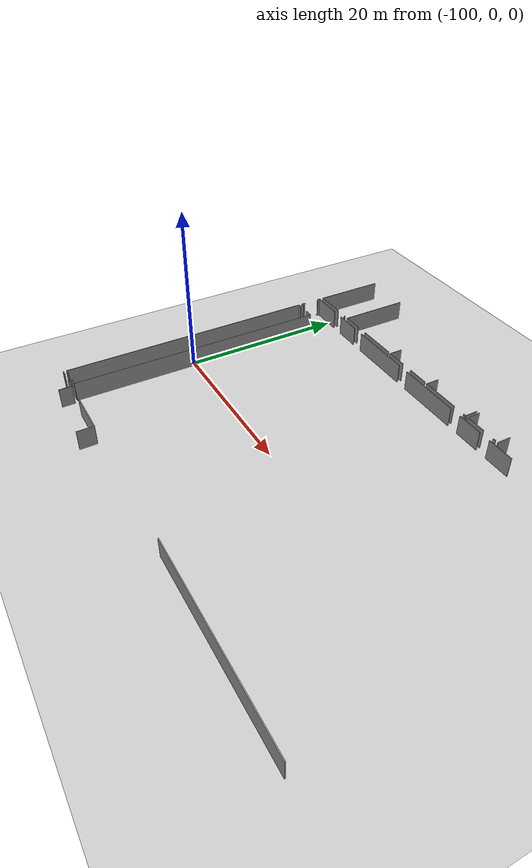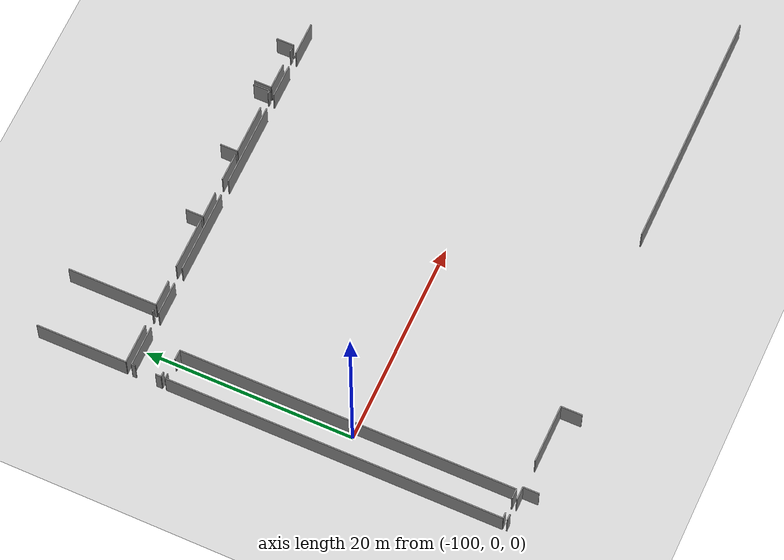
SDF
<sdf version="1.6">
 <world name="default">
  <model name="ground_plane">
   <static>1</static>
   <link name="link">
    <collision name="collision">
     <geometry><plane><normal>0 0 1</normal><size>100 100</size></plane></geometry>
     <surface><friction><ode><mu>100</mu><mu2>50</mu2></ode></friction></surface>
    </collision>
    <visual name="visual">
     <cast_shadows>0</cast_shadows>
     <geometry><plane><normal>0 0 1</normal><size>100 100</size></plane></geometry>
     <material>
      <script><uri>file://media/materials/scripts/gazebo.material</uri><name>Gazebo/Grey</name></script>
     </material>
    </visual>
   </link>
  </model>
  <model name="50010536_PLAN3">
   <static>1</static>
   <link name="Wall_0">
    <collision name="Wall_0_Collision">
     <geometry><box><size>8.70365362029 0.1 2.5</size></box></geometry>
     <pose>4.35182681015 0 1.25 0 0 0</pose>
    </collision>
    <visual name="Wall_0_Visual">
     <pose>4.35182681015 0 1.25 0 0 0</pose>
     <geometry><box><size>8.70365362029 0.1 2.5</size></box></geometry>
     <material>
      <script><uri>file://media/materials/scripts/gazebo.material</uri><name>Gazebo/Grey</name></script>
      <ambient>1 1 1 1</ambient>
     </material>
    </visual>
    <pose>0.0284417357077 -8.98103672666 0 0 0 1.57079632679</pose>
   </link>
   <link name="Wall_4">
    <collision name="Wall_4_Collision">
     <geometry><box><size>0.234898263657 0.1 2.5</size></box></geometry>
     <pose>0.117449131829 0 1.25 0 0 0</pose>
    </collision>
    <visual name="Wall_4_Visual">
     <pose>0.117449131829 0 1.25 0 0 0</pose>
     <geometry><box><size>0.234898263657 0.1 2.5</size></box></geometry>
     <material>
      <script><uri>file://media/materials/scripts/gazebo.material</uri><name>Gazebo/Grey</name></script>
      <ambient>1 1 1 1</ambient>
     </material>
    </visual>
    <pose>5.57534203092 -8.98586166397 0 0 0 3.14159265359</pose>
   </link>
   <link name="Wall_5">
    <collision name="Wall_5_Collision">
     <geometry><box><size>3.88052231522 0.1 2.5</size></box></geometry>
     <pose>1.94026115761 0 1.25 0 0 0</pose>
    </collision>
    <visual name="Wall_5_Visual">
     <pose>1.94026115761 0 1.25 0 0 0</pose>
     <geometry><box><size>3.88052231522 0.1 2.5</size></box></geometry>
     <material>
      <script><uri>file://media/materials/scripts/gazebo.material</uri><name>Gazebo/Grey</name></script>
      <ambient>1 1 1 1</ambient>
     </material>
    </visual>
    <pose>3.90896105133 -8.98586166397 0 0 0 3.14034928011</pose>
   </link>
   <link name="Wall_6">
    <collision name="Wall_6_Collision">
     <geometry><box><size>8.59194362442 0.1 2.5</size></box></geometry>
     <pose>4.29597181221 0 1.25 0 0 0</pose>
    </collision>
    <visual name="Wall_6_Visual">
     <pose>4.29597181221 0 1.25 0 0 0</pose>
     <geometry><box><size>8.59194362442 0.1 2.5</size></box></geometry>
     <material>
      <script><uri>file://media/materials/scripts/gazebo.material</uri><name>Gazebo/Grey</name></script>
      <ambient>1 1 1 1</ambient>
     </material>
    </visual>
    <pose>6.09694314827 -8.98509983176 0 0 0 1.57079632679</pose>
   </link>
   <link name="Wall_16">
    <collision name="Wall_16_Collision">
     <geometry><box><size>5.1129098816 0.1 2.5</size></box></geometry>
     <pose>2.5564549408 0 1.25 0 0 0</pose>
    </collision>
    <visual name="Wall_16_Visual">
     <pose>2.5564549408 0 1.25 0 0 0</pose>
     <geometry><box><size>5.1129098816 0.1 2.5</size></box></geometry>
     <material>
      <script><uri>file://media/materials/scripts/gazebo.material</uri><name>Gazebo/Grey</name></script>
      <ambient>1 1 1 1</ambient>
     </material>
    </visual>
    <pose>15.3105418532 -8.96478430626 0 0 0 3.14159265359</pose>
   </link>
   <link name="Wall_17">
    <collision name="Wall_17_Collision">
     <geometry><box><size>2.54104556468 0.1 2.5</size></box></geometry>
     <pose>1.27052278234 0 1.25 0 0 0</pose>
    </collision>
    <visual name="Wall_17_Visual">
     <pose>1.27052278234 0 1.25 0 0 0</pose>
     <geometry><box><size>2.54104556468 0.1 2.5</size></box></geometry>
     <material>
      <script><uri>file://media/materials/scripts/gazebo.material</uri><name>Gazebo/Grey</name></script>
      <ambient>1 1 1 1</ambient>
     </material>
    </visual>
    <pose>8.63790750087 -8.96478430626 0 0 0 -3.13359762106</pose>
   </link>
   <link name="Wall_18">
    <collision name="Wall_18_Collision">
     <geometry><box><size>1.70117131702 0.1 2.5</size></box></geometry>
     <pose>0.850585658509 0 1.25 0 0 0</pose>
    </collision>
    <visual name="Wall_18_Visual">
     <pose>0.850585658509 0 1.25 0 0 0</pose>
     <geometry><box><size>1.70117131702 0.1 2.5</size></box></geometry>
     <material>
      <script><uri>file://media/materials/scripts/gazebo.material</uri><name>Gazebo/Grey</name></script>
      <ambient>1 1 1 1</ambient>
     </material>
    </visual>
    <pose>15.6721582072 -9.00770085389 0 0 0 1.57079632679</pose>
   </link>
   <link name="Wall_27">
    <collision name="Wall_27_Collision">
     <geometry><box><size>2.74513538393 0.1 2.5</size></box></geometry>
     <pose>1.37256769197 0 1.25 0 0 0</pose>
    </collision>
    <visual name="Wall_27_Visual">
     <pose>1.37256769197 0 1.25 0 0 0</pose>
     <geometry><box><size>2.74513538393 0.1 2.5</size></box></geometry>
     <material>
      <script><uri>file://media/materials/scripts/gazebo.material</uri><name>Gazebo/Grey</name></script>
      <ambient>1 1 1 1</ambient>
     </material>
    </visual>
    <pose>22.5101101482 -8.9701171317 0 0 0 3.14159265359</pose>
   </link>
   <link name="Wall_28">
    <collision name="Wall_28_Collision">
     <geometry><box><size>2.6026901922 0.1 2.5</size></box></geometry>
     <pose>1.3013450961 0 1.25 0 0 0</pose>
    </collision>
    <visual name="Wall_28_Visual">
     <pose>1.3013450961 0 1.25 0 0 0</pose>
     <geometry><box><size>2.6026901922 0.1 2.5</size></box></geometry>
     <material>
      <script><uri>file://media/materials/scripts/gazebo.material</uri><name>Gazebo/Grey</name></script>
      <ambient>1 1 1 1</ambient>
     </material>
    </visual>
    <pose>18.2745770244 -8.9701171317 0 0 0 -3.12715181518</pose>
   </link>
   <link name="Wall_29">
    <collision name="Wall_29_Collision">
     <geometry><box><size>1.68237945592 0.1 2.5</size></box></geometry>
     <pose>0.841189727962 0 1.25 0 0 0</pose>
    </collision>
    <visual name="Wall_29_Visual">
     <pose>0.841189727962 0 1.25 0 0 0</pose>
     <geometry><box><size>1.68237945592 0.1 2.5</size></box></geometry>
     <material>
      <script><uri>file://media/materials/scripts/gazebo.material</uri><name>Gazebo/Grey</name></script>
      <ambient>1 1 1 1</ambient>
     </material>
    </visual>
    <pose>22.8846776497 -8.98890899279 0 0 0 1.57079632679</pose>
   </link>
   <link name="Wall_37">
    <collision name="Wall_37_Collision">
     <geometry><box><size>1.58867409453 0.1 2.5</size></box></geometry>
     <pose>0.794337047265 0 1.25 0 0 0</pose>
    </collision>
    <visual name="Wall_37_Visual">
     <pose>0.794337047265 0 1.25 0 0 0</pose>
     <geometry><box><size>1.58867409453 0.1 2.5</size></box></geometry>
     <material>
      <script><uri>file://media/materials/scripts/gazebo.material</uri><name>Gazebo/Grey</name></script>
      <ambient>1 1 1 1</ambient>
     </material>
    </visual>
    <pose>29.7043456179 -7.39388629654 0 0 0 -1.57079632679</pose>
   </link>
   <link name="Wall_38">
    <collision name="Wall_38_Collision">
     <geometry><box><size>0.329111513189 0.1 2.5</size></box></geometry>
     <pose>0.164555756595 0 1.25 0 0 0</pose>
    </collision>
    <visual name="Wall_38_Visual">
     <pose>0.164555756595 0 1.25 0 0 0</pose>
     <geometry><box><size>0.329111513189 0.1 2.5</size></box></geometry>
     <material>
      <script><uri>file://media/materials/scripts/gazebo.material</uri><name>Gazebo/Grey</name></script>
      <ambient>1 1 1 1</ambient>
     </material>
    </visual>
    <pose>29.7043456179 -8.98256039107 0 0 0 3.14159265359</pose>
   </link>
   <link name="Wall_39">
    <collision name="Wall_39_Collision">
     <geometry><box><size>4.90391802241 0.1 2.5</size></box></geometry>
     <pose>2.4519590112 0 1.25 0 0 0</pose>
    </collision>
    <visual name="Wall_39_Visual">
     <pose>2.4519590112 0 1.25 0 0 0</pose>
     <geometry><box><size>4.90391802241 0.1 2.5</size></box></geometry>
     <material>
      <script><uri>file://media/materials/scripts/gazebo.material</uri><name>Gazebo/Grey</name></script>
      <ambient>1 1 1 1</ambient>
     </material>
    </visual>
    <pose>27.7885915627 -8.98256039107 0 0 0 -3.14029805538</pose>
   </link>
   <link name="Wall_40">
    <collision name="Wall_40_Collision">
     <geometry><box><size>1.66460337111 0.1 2.5</size></box></geometry>
     <pose>0.832301685554 0 1.25 0 0 0</pose>
    </collision>
    <visual name="Wall_40_Visual">
     <pose>0.832301685554 0 1.25 0 0 0</pose>
     <geometry><box><size>1.66460337111 0.1 2.5</size></box></geometry>
     <material>
      <script><uri>file://media/materials/scripts/gazebo.material</uri><name>Gazebo/Grey</name></script>
      <ambient>1 1 1 1</ambient>
     </material>
    </visual>
    <pose>30.0624067549 -8.9774815097 0 0 0 1.57079632679</pose>
   </link>
   <link name="Wall_48">
    <collision name="Wall_48_Collision">
     <geometry><box><size>0.365679459099 0.1 2.5</size></box></geometry>
     <pose>0.18283972955 0 1.25 0 0 0</pose>
    </collision>
    <visual name="Wall_48_Visual">
     <pose>0.18283972955 0 1.25 0 0 0</pose>
     <geometry><box><size>0.365679459099 0.1 2.5</size></box></geometry>
     <material>
      <script><uri>file://media/materials/scripts/gazebo.material</uri><name>Gazebo/Grey</name></script>
      <ambient>1 1 1 1</ambient>
     </material>
    </visual>
    <pose>34.5061740152 -8.98103672666 0 0 0 3.14159265359</pose>
   </link>
   <link name="Wall_49">
    <collision name="Wall_49_Collision">
     <geometry><box><size>2.56382178378 0.1 2.5</size></box></geometry>
     <pose>1.28191089189 0 1.25 0 0 0</pose>
    </collision>
    <visual name="Wall_49_Visual">
     <pose>1.28191089189 0 1.25 0 0 0</pose>
     <geometry><box><size>2.56382178378 0.1 2.5</size></box></geometry>
     <material>
      <script><uri>file://media/materials/scripts/gazebo.material</uri><name>Gazebo/Grey</name></script>
      <ambient>1 1 1 1</ambient>
     </material>
    </visual>
    <pose>32.6262260737 -8.98103672666 0 0 0 3.14020596668</pose>
   </link>
   <link name="Wall_50">
    <collision name="Wall_50_Collision">
     <geometry><box><size>1.69228327461 0.1 2.5</size></box></geometry>
     <pose>0.846141637304 0 1.25 0 0 0</pose>
    </collision>
    <visual name="Wall_50_Visual">
     <pose>0.846141637304 0 1.25 0 0 0</pose>
     <geometry><box><size>1.69228327461 0.1 2.5</size></box></geometry>
     <material>
      <script><uri>file://media/materials/scripts/gazebo.material</uri><name>Gazebo/Grey</name></script>
      <ambient>1 1 1 1</ambient>
     </material>
    </visual>
    <pose>34.8680443132 -8.99601942672 0 0 0 1.57079632679</pose>
   </link>
   <link name="Wall_85">
    <collision name="Wall_85_Collision">
     <geometry><box><size>32.1571913786 0.1 2.5</size></box></geometry>
     <pose>16.0785956893 0 1.25 0 0 0</pose>
    </collision>
    <visual name="Wall_85_Visual">
     <pose>16.0785956893 0 1.25 0 0 0</pose>
     <geometry><box><size>32.1571913786 0.1 2.5</size></box></geometry>
     <material>
      <script><uri>file://media/materials/scripts/gazebo.material</uri><name>Gazebo/Grey</name></script>
      <ambient>1 1 1 1</ambient>
     </material>
    </visual>
    <pose>0.0192997492302 -44.9560232359 0 0 0 1.57079632679</pose>
   </link>
   <link name="Wall_86">
    <collision name="Wall_86_Collision">
     <geometry><box><size>0.495952766403 0.1 2.5</size></box></geometry>
     <pose>0.247976383202 0 1.25 0 0 0</pose>
    </collision>
    <visual name="Wall_86_Visual">
     <pose>0.247976383202 0 1.25 0 0 0</pose>
     <geometry><box><size>0.495952766403 0.1 2.5</size></box></geometry>
     <material>
      <script><uri>file://media/materials/scripts/gazebo.material</uri><name>Gazebo/Grey</name></script>
      <ambient>1 1 1 1</ambient>
     </material>
    </visual>
    <pose>0.0192997492302 -12.7988318573 0 0 0 0.0</pose>
   </link>
   <link name="Wall_87">
    <collision name="Wall_87_Collision">
     <geometry><box><size>0.965749293718 0.1 2.5</size></box></geometry>
     <pose>0.482874646859 0 1.25 0 0 0</pose>
    </collision>
    <visual name="Wall_87_Visual">
     <pose>0.482874646859 0 1.25 0 0 0</pose>
     <geometry><box><size>0.965749293718 0.1 2.5</size></box></geometry>
     <material>
      <script><uri>file://media/materials/scripts/gazebo.material</uri><name>Gazebo/Grey</name></script>
      <ambient>1 1 1 1</ambient>
     </material>
    </visual>
    <pose>1.99701615719 -12.7988318573 0 0 0 0.0</pose>
   </link>
   <link name="Wall_88">
    <collision name="Wall_88_Collision">
     <geometry><box><size>32.1386534616 0.1 2.5</size></box></geometry>
     <pose>16.0693267308 0 1.25 0 0 0</pose>
    </collision>
    <visual name="Wall_88_Visual">
     <pose>16.0693267308 0 1.25 0 0 0</pose>
     <geometry><box><size>32.1386534616 0.1 2.5</size></box></geometry>
     <material>
      <script><uri>file://media/materials/scripts/gazebo.material</uri><name>Gazebo/Grey</name></script>
      <ambient>1 1 1 1</ambient>
     </material>
    </visual>
    <pose>2.96276545091 -12.7988318573 0 0 0 -1.57079632679</pose>
   </link>
   <link name="Wall_89">
    <collision name="Wall_89_Collision">
     <geometry><box><size>0.940608830905 0.1 2.5</size></box></geometry>
     <pose>0.470304415452 0 1.25 0 0 0</pose>
    </collision>
    <visual name="Wall_89_Visual">
     <pose>0.470304415452 0 1.25 0 0 0</pose>
     <geometry><box><size>0.940608830905 0.1 2.5</size></box></geometry>
     <material>
      <script><uri>file://media/materials/scripts/gazebo.material</uri><name>Gazebo/Grey</name></script>
      <ambient>1 1 1 1</ambient>
     </material>
    </visual>
    <pose>2.96276545091 -44.9374853189 0 0 0 3.14159265359</pose>
   </link>
   <link name="Wall_90">
    <collision name="Wall_90_Collision">
     <geometry><box><size>0.564314347457 0.1 2.5</size></box></geometry>
     <pose>0.282157173729 0 1.25 0 0 0</pose>
    </collision>
    <visual name="Wall_90_Visual">
     <pose>0.282157173729 0 1.25 0 0 0</pose>
     <geometry><box><size>0.564314347457 0.1 2.5</size></box></geometry>
     <material>
      <script><uri>file://media/materials/scripts/gazebo.material</uri><name>Gazebo/Grey</name></script>
      <ambient>1 1 1 1</ambient>
     </material>
    </visual>
    <pose>0.583309526077 -44.9374853189 0 0 0 -3.10873640439</pose>
   </link>
   <link name="Wall_91">
    <collision name="Wall_91_Collision">
     <geometry><box><size>3.88534425293 0.1 2.5</size></box></geometry>
     <pose>1.94267212646 0 1.25 0 0 0</pose>
    </collision>
    <visual name="Wall_91_Visual">
     <pose>1.94267212646 0 1.25 0 0 0</pose>
     <geometry><box><size>3.88534425293 0.1 2.5</size></box></geometry>
     <material>
      <script><uri>file://media/materials/scripts/gazebo.material</uri><name>Gazebo/Grey</name></script>
      <ambient>1 1 1 1</ambient>
     </material>
    </visual>
    <pose>0.0172681966797 -9.52854013903 0 0 0 0.0</pose>
   </link>
   <link name="Wall_92">
    <collision name="Wall_92_Collision">
     <geometry><box><size>3.22712122655 0.1 2.5</size></box></geometry>
     <pose>1.61356061327 0 1.25 0 0 0</pose>
    </collision>
    <visual name="Wall_92_Visual">
     <pose>1.61356061327 0 1.25 0 0 0</pose>
     <geometry><box><size>3.22712122655 0.1 2.5</size></box></geometry>
     <material>
      <script><uri>file://media/materials/scripts/gazebo.material</uri><name>Gazebo/Grey</name></script>
      <ambient>1 1 1 1</ambient>
     </material>
    </visual>
    <pose>5.4516712694 -9.52854013903 0 0 0 0.0</pose>
   </link>
   <link name="Wall_93">
    <collision name="Wall_93_Collision">
     <geometry><box><size>8.06551756976 0.1 2.5</size></box></geometry>
     <pose>4.03275878488 0 1.25 0 0 0</pose>
    </collision>
    <visual name="Wall_93_Visual">
     <pose>4.03275878488 0 1.25 0 0 0</pose>
     <geometry><box><size>8.06551756976 0.1 2.5</size></box></geometry>
     <material>
      <script><uri>file://media/materials/scripts/gazebo.material</uri><name>Gazebo/Grey</name></script>
      <ambient>1 1 1 1</ambient>
     </material>
    </visual>
    <pose>10.2308986446 -9.52854013903 0 0 0 0.0</pose>
   </link>
   <link name="Wall_94">
    <collision name="Wall_94_Collision">
     <geometry><box><size>8.11071961401 0.1 2.5</size></box></geometry>
     <pose>4.055359807 0 1.25 0 0 0</pose>
    </collision>
    <visual name="Wall_94_Visual">
     <pose>4.055359807 0 1.25 0 0 0</pose>
     <geometry><box><size>8.11071961401 0.1 2.5</size></box></geometry>
     <material>
      <script><uri>file://media/materials/scripts/gazebo.material</uri><name>Gazebo/Grey</name></script>
      <ambient>1 1 1 1</ambient>
     </material>
    </visual>
    <pose>19.8023045424 -9.52854013903 0 0 0 0.0</pose>
   </link>
   <link name="Wall_95">
    <collision name="Wall_95_Collision">
     <geometry><box><size>3.27029171825 0.1 2.5</size></box></geometry>
     <pose>1.63514585912 0 1.25 0 0 0</pose>
    </collision>
    <visual name="Wall_95_Visual">
     <pose>1.63514585912 0 1.25 0 0 0</pose>
     <geometry><box><size>3.27029171825 0.1 2.5</size></box></geometry>
     <material>
      <script><uri>file://media/materials/scripts/gazebo.material</uri><name>Gazebo/Grey</name></script>
      <ambient>1 1 1 1</ambient>
     </material>
    </visual>
    <pose>29.4135796591 -9.52854013903 0 0 0 0.0</pose>
   </link>
   <link name="Wall_96">
    <collision name="Wall_96_Collision">
     <geometry><box><size>3.31727137098 0.1 2.5</size></box></geometry>
     <pose>1.65863568549 0 1.25 0 0 0</pose>
    </collision>
    <visual name="Wall_96_Visual">
     <pose>1.65863568549 0 1.25 0 0 0</pose>
     <geometry><box><size>3.31727137098 0.1 2.5</size></box></geometry>
     <material>
      <script><uri>file://media/materials/scripts/gazebo.material</uri><name>Gazebo/Grey</name></script>
      <ambient>1 1 1 1</ambient>
     </material>
    </visual>
    <pose>34.1816334952 -9.52854013903 0 0 0 0.0</pose>
   </link>
   <link name="Wall_105">
    <collision name="Wall_105_Collision">
     <geometry><box><size>0.4837634511 0.1 2.5</size></box></geometry>
     <pose>0.24188172555 0 1.25 0 0 0</pose>
    </collision>
    <visual name="Wall_105_Visual">
     <pose>0.24188172555 0 1.25 0 0 0</pose>
     <geometry><box><size>0.4837634511 0.1 2.5</size></box></geometry>
     <material>
      <script><uri>file://media/materials/scripts/gazebo.material</uri><name>Gazebo/Grey</name></script>
      <ambient>1 1 1 1</ambient>
     </material>
    </visual>
    <pose>0.50534869695 -12.3965844523 0 0 0 3.14159265359</pose>
   </link>
   <link name="Wall_106">
    <collision name="Wall_106_Collision">
     <geometry><box><size>0.540392978446 0.1 2.5</size></box></geometry>
     <pose>0.270196489223 0 1.25 0 0 0</pose>
    </collision>
    <visual name="Wall_106_Visual">
     <pose>0.270196489223 0 1.25 0 0 0</pose>
     <geometry><box><size>0.540392978446 0.1 2.5</size></box></geometry>
     <material>
      <script><uri>file://media/materials/scripts/gazebo.material</uri><name>Gazebo/Grey</name></script>
      <ambient>1 1 1 1</ambient>
     </material>
    </visual>
    <pose>0.0215852458496 -12.3965844523 0 0 0 1.57079632679</pose>
   </link>
   <link name="Wall_107">
    <collision name="Wall_107_Collision">
     <geometry><box><size>0.364181382991 0.1 2.5</size></box></geometry>
     <pose>0.182090691495 0 1.25 0 0 0</pose>
    </collision>
    <visual name="Wall_107_Visual">
     <pose>0.182090691495 0 1.25 0 0 0</pose>
     <geometry><box><size>0.364181382991 0.1 2.5</size></box></geometry>
     <material>
      <script><uri>file://media/materials/scripts/gazebo.material</uri><name>Gazebo/Grey</name></script>
      <ambient>1 1 1 1</ambient>
     </material>
    </visual>
    <pose>0.0215852458496 -9.89269593372 0 0 0 1.58265072266</pose>
   </link>
   <link name="Wall_110">
    <collision name="Wall_110_Collision">
     <geometry><box><size>0.592959400692 0.1 2.5</size></box></geometry>
     <pose>0.296479700346 0 1.25 0 0 0</pose>
    </collision>
    <visual name="Wall_110_Visual">
     <pose>0.296479700346 0 1.25 0 0 0</pose>
     <geometry><box><size>0.592959400692 0.1 2.5</size></box></geometry>
     <material>
      <script><uri>file://media/materials/scripts/gazebo.material</uri><name>Gazebo/Grey</name></script>
      <ambient>1 1 1 1</ambient>
     </material>
    </visual>
    <pose>0.0 -45.3564930324 0 0 0 0.0</pose>
   </link>
   <link name="Wall_111">
    <collision name="Wall_111_Collision">
     <geometry><box><size>1.30679617814 0.1 2.5</size></box></geometry>
     <pose>0.653398089071 0 1.25 0 0 0</pose>
    </collision>
    <visual name="Wall_111_Visual">
     <pose>0.653398089071 0 1.25 0 0 0</pose>
     <geometry><box><size>1.30679617814 0.1 2.5</size></box></geometry>
     <material>
      <script><uri>file://media/materials/scripts/gazebo.material</uri><name>Gazebo/Grey</name></script>
      <ambient>1 1 1 1</ambient>
     </material>
    </visual>
    <pose>2.06913627274 -45.3564930324 0 0 0 0.0</pose>
   </link>
   <link name="Wall_112">
    <collision name="Wall_112_Collision">
     <geometry><box><size>1.52823540615 0.1 2.5</size></box></geometry>
     <pose>0.764117703076 0 1.25 0 0 0</pose>
    </collision>
    <visual name="Wall_112_Visual">
     <pose>0.764117703076 0 1.25 0 0 0</pose>
     <geometry><box><size>1.52823540615 0.1 2.5</size></box></geometry>
     <material>
      <script><uri>file://media/materials/scripts/gazebo.material</uri><name>Gazebo/Grey</name></script>
      <ambient>1 1 1 1</ambient>
     </material>
    </visual>
    <pose>3.37593245088 -45.3564930324 0 0 0 -1.57079632679</pose>
   </link>
   <link name="Wall_126">
    <collision name="Wall_126_Collision">
     <geometry><box><size>5.6243532362 0.1 2.5</size></box></geometry>
     <pose>2.8121766181 0 1.25 0 0 0</pose>
    </collision>
    <visual name="Wall_126_Visual">
     <pose>2.8121766181 0 1.25 0 0 0</pose>
     <geometry><box><size>5.6243532362 0.1 2.5</size></box></geometry>
     <material>
      <script><uri>file://media/materials/scripts/gazebo.material</uri><name>Gazebo/Grey</name></script>
      <ambient>1 1 1 1</ambient>
     </material>
    </visual>
    <pose>6.07459607022 -45.3582706409 0 0 0 0.0</pose>
   </link>
   <link name="Wall_127">
    <collision name="Wall_127_Collision">
     <geometry><box><size>2.03180649462 0.1 2.5</size></box></geometry>
     <pose>1.01590324731 0 1.25 0 0 0</pose>
    </collision>
    <visual name="Wall_127_Visual">
     <pose>1.01590324731 0 1.25 0 0 0</pose>
     <geometry><box><size>2.03180649462 0.1 2.5</size></box></geometry>
     <material>
      <script><uri>file://media/materials/scripts/gazebo.material</uri><name>Gazebo/Grey</name></script>
      <ambient>1 1 1 1</ambient>
     </material>
    </visual>
    <pose>11.6989493064 -45.3582706409 0 0 0 -1.57079632679</pose>
   </link>
   <link name="Wall_170">
    <collision name="Wall_170_Collision">
     <geometry><box><size>23.48322382 0.1 2.5</size></box></geometry>
     <pose>11.74161191 0 1.25 0 0 0</pose>
    </collision>
    <visual name="Wall_170_Visual">
     <pose>11.74161191 0 1.25 0 0 0</pose>
     <geometry><box><size>23.48322382 0.1 2.5</size></box></geometry>
     <material>
      <script><uri>file://media/materials/scripts/gazebo.material</uri><name>Gazebo/Grey</name></script>
      <ambient>1 1 1 1</ambient>
     </material>
    </visual>
    <pose>30.0596133702 -45.3412563883 0 0 0 0.0</pose>
   </link>
   <pose>-102.5 29.6500539631 0 0 0 0</pose>
  </model>
 </world>
</sdf>
